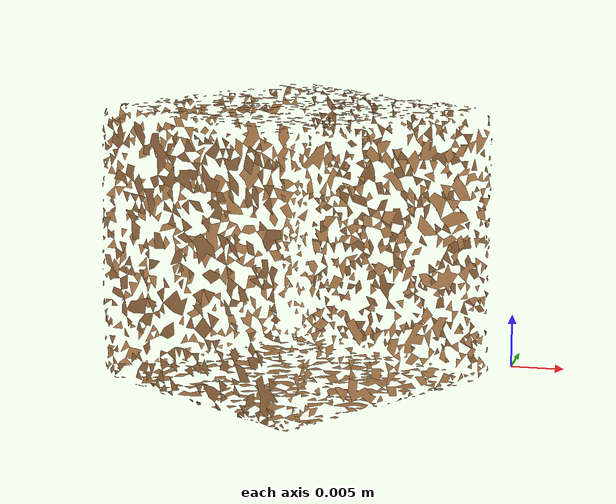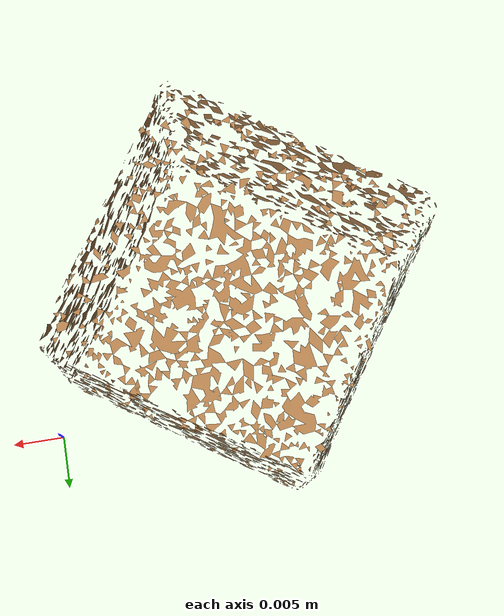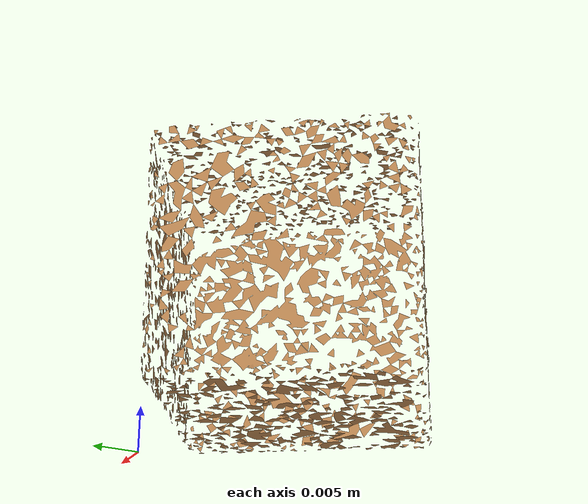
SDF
<?xml version='1.0'?>
<sdf version="1.4">
  <model name="b_colored_wood_blocks">
    <static>false</static>
    <link name="link">
      <inertial>
        <pose>-0.018821263920805856 -0.008818559894969996 0.012633433800824467 2.8243865063452396 -0.6015216908224935 2.6738516755625317</pose>
        <mass>1.6408287444917165e-05</mass>
        <inertia>
          <ixx>1.7763141796845345e-09</ixx>
          <ixy>2.795720971859388e-26</ixy>
          <ixz>1.5428517433439713e-26</ixz>
          <iyy>1.7649600209721181e-09</iyy>
          <iyz>8.112697994466366e-27</iyz>
          <izz>1.7544145643022795e-09</izz>
        </inertia>
      </inertial>
      <collision name="collision">
        <geometry>
          <mesh>
            <!-- Use a downsampled mesh for collisions -->
            <uri>model://070-b_colored_wood_blocks/downsampled.obj</uri>
	        </mesh>
        </geometry>
        <surface>
      </surface>
      </collision>
      <visual name="visual">
        <geometry>
          <mesh>
            <uri>model://070-b_colored_wood_blocks/google_16k/textured.obj</uri>
	        </mesh>
        </geometry>
        <material>
          <script>
            <uri>model://070-b_colored_wood_blocks/b_colored_wood_blocks.material</uri>
            <name>b_colored_wood_blocks</name>
          </script>
        </material>
      </visual>
    </link>
  </model>
</sdf>
